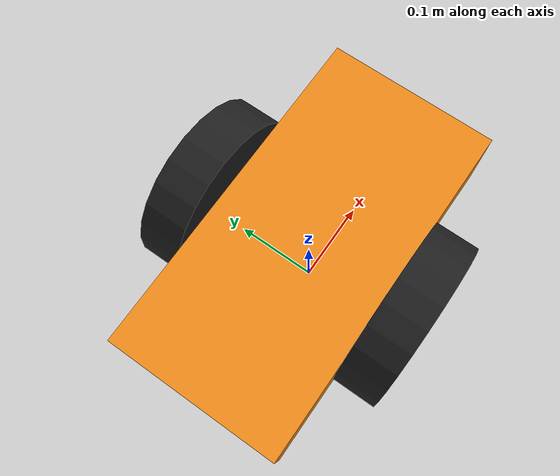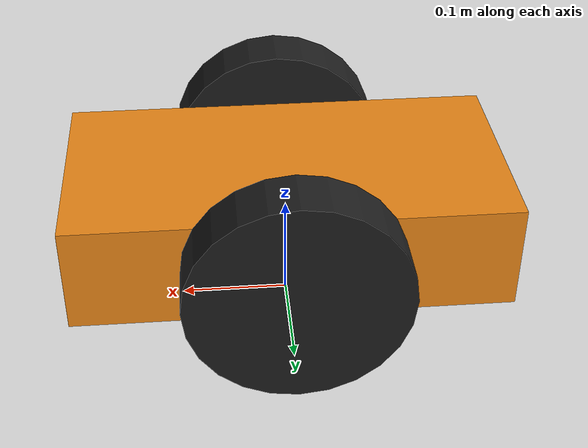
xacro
<?xml version="1.0"?>
<robot name="robot" xmlns:xacro="http://www.ros.org/wiki/xacro">
    <xacro:property name="PI" value="3.1415926535897931" />
    <xacro:property name="chassisHeight" value="0.1" />
    <xacro:property name="chassisLength" value="0.4" />
    <xacro:property name="chassisWidth" value="0.2" />
    <xacro:property name="chassisMass" value="50" />
    <xacro:property name="casterRadius" value="0.05" />
    <xacro:property name="casterMass" value="5" />
    <xacro:property name="wheelWidth" value="0.05" />
    <xacro:property name="wheelRadius" value="0.1" />
    <xacro:property name="wheelPos" value="0.2" />
    <xacro:property name="wheelMass" value="5" />
    <xacro:include filename="$(find urdf_tutorial)/urdf/macros.xacro" />
    <material name="orange">
  	<color rgba="${255/255} ${108/255} ${10/255} 1.0"/>
    </material>

    <material name="red">
	  <color rgba="0.8 0.0 0.0 1.0"/>
    </material>

    <link name='chassis'>
    <collision>
        <origin xyz="0 0 0.1" rpy="0 0 0" />
        <geometry>
            <box size="0.4 0.2 0.1" />
        </geometry>
    </collision>
    <visual>
        <origin xyz="0 0 0.1" rpy="0 0 0" />
        <geometry>
            <box size="0.4 0.2 0.1" />
        </geometry>

    </visual>
    <inertial>
        <origin xyz="0 0 0.1" rpy="0 0 0" />
        <mass value="50" />
        <inertia ixx="0.4" ixy="0" ixz="0" iyy="0.2" iyz="0" izz="0.1" />
    </inertial>
    </link>
    <link name="footprint" />
    <joint name="base_joint" type="fixed">
        <parent link="footprint" />
        <child link="chassis" />
    </joint>

    <link name="caster_wheel">
    <collision>
        <origin xyz="${casterRadius-chassisLength/2} 0 ${casterRadius-chassisHeight+wheelRadius}" rpy="0 0 0" />
        <geometry>
            <sphere radius="${casterRadius}" />
        </geometry>
    </collision>
    <visual>
        <origin xyz="${casterRadius-chassisLength/2} 0 ${casterRadius-chassisHeight+wheelRadius}" rpy="0 0 0" />
        <geometry>
            <sphere radius="${casterRadius}" />
        </geometry>
        <material name="red" />
    </visual>
    <inertial>
        <origin xyz="${casterRadius-chassisLength/2} 0 ${casterRadius-chassisHeight+wheelRadius}" rpy="0 0 0" />
        <mass value="${casterMass}" />
        <sphere_inertia m="${casterMass}" r="${casterRadius}" />
    </inertial>
    </link>

    <joint name="fixed" type="fixed">
        <parent link="chassis" />
        <child link="caster_wheel" />
    </joint>

    <link name="left_wheel">
    <collision>
        <origin xyz="0 0 0" rpy="0 ${PI/2} ${PI/2}" />
        <geometry>
            <cylinder length="${wheelWidth}" radius="${wheelRadius}" />
        </geometry>
    </collision>
    <visual>
        <origin xyz="0 0 0" rpy="0 ${PI/2} ${PI/2}" />
        <geometry>
            <cylinder length="${wheelWidth}" radius="${wheelRadius}" />
        </geometry>
        <material name="black" />
    </visual>
    <inertial>
        <origin xyz="0 0 0" rpy="0 ${PI/2} ${PI/2}" />
        <mass value="${wheelMass}" />
        <cylinder_inertia m="${wheelMass}" r="${wheelRadius}" h="${wheelWidth}" />
    </inertial>
    <surface>

      </surface>
    </link>

    <joint name="left_wheel_hinge" type="continuous">
        <parent link="chassis" />
        <child link="left_wheel" />
        <origin xyz="${-wheelPos+chassisLength/2} ${wheelWidth/2+1*chassisWidth/2} ${wheelRadius}" rpy="0 0 0" />
        <axis xyz="0 1 0" rpy="0 0 0" />
        <limit effort="100" velocity="100" />
        <joint_properties damping="0.0" friction="0.5" />
    </joint>

    <link name="right_wheel">
    <collision>
        <origin xyz="0 0 0" rpy="0 ${PI/2} ${PI/2}" />
        <geometry>
            <cylinder length="${wheelWidth}" radius="${wheelRadius}" />
        </geometry>
    </collision>
    <visual>
        <origin xyz="0 0 0" rpy="0 ${PI/2} ${PI/2}" />
        <geometry>
            <cylinder length="${wheelWidth}" radius="${wheelRadius}" />
        </geometry>
        <material name="black" />
    </visual>
    <inertial>
        <origin xyz="0 0 0" rpy="0 ${PI/2} ${PI/2}" />
        <mass value="${wheelMass}" />
        <cylinder_inertia m="${wheelMass}" r="${wheelRadius}" h="${wheelWidth}" />
    </inertial>
    <surface>

      </surface>
    </link>

    <joint name="right_wheel_hinge" type="continuous">
        <parent link="chassis" />
        <child link="right_wheel" />
        <origin xyz="${-wheelPos+chassisLength/2} ${-1*wheelWidth/2-1*chassisWidth/2} ${wheelRadius}" rpy="0 0 0" />
        <axis xyz="0 1 0" rpy="0 0 0" />
        <limit effort="100" velocity="100" />
        <joint_properties damping="0.0" friction="0.5" />
    </joint>

    <transmission name="tran1">
        <type>transmission_interface/SimpleTransmission</type>
        <joint name="left_wheel_hinge">
            <hardwareInterface>hardware_interface/EffortJointInterface</hardwareInterface>
        </joint>
        <actuator name="motor1">
            <hardwareInterface>hardware_interface/EffortJointInterface</hardwareInterface>
            <mechanicalReduction>1</mechanicalReduction>
        </actuator>
    </transmission>

    <transmission name="tran2">
        <type>transmission_interface/SimpleTransmission</type>
        <joint name="right_wheel_hinge">
            <hardwareInterface>hardware_interface/EffortJointInterface</hardwareInterface>
        </joint>
        <actuator name="motor2">
            <hardwareInterface>hardware_interface/EffortJointInterface</hardwareInterface>
            <mechanicalReduction>1</mechanicalReduction>
        </actuator>
    </transmission>
   <gazebo reference="chassis">
  		<material>Gazebo/Orange</material>
   </gazebo>
   <gazebo reference="caster_wheel">
        <mu1>0.5</mu1>
  	<mu2>0.5</mu2>
  	<material>Gazebo/Red</material>
   </gazebo>
   <gazebo reference="left_wheel">
        <mu1>0.5</mu1>
  	<mu2>0.5</mu2>
  	<material>Gazebo/Red</material>
   </gazebo>
   <gazebo reference="right_wheel">
        <mu1>0.5</mu1>
  	<mu2>0.5</mu2>
  	<material>Gazebo/Red</material>
   </gazebo>
   <gazebo>
	 <plugin name="gazebo_ros_control" filename="libgazebo_ros_control.so">
	 <robotNamespace></robotNamespace>
	 <robotSimType>gazebo_ros_control/DefaultRobotHWSim</robotSimType>
         <legacyModeNS>false</legacyModeNS>
	 </plugin>
  </gazebo>
<gazebo>
        <plugin name="differential_drive_controller" filename="libgazebo_ros_diff_drive.so">
            <alwaysOn>true</alwaysOn>
            <legacyMode>false</legacyMode>
            <updateRate>100</updateRate>
            <leftJoint>left_wheel_hinge</leftJoint>
            <rightJoint>right_wheel_hinge</rightJoint>
            <wheelSeparation>${chassisWidth+wheelWidth}</wheelSeparation>
            <wheelDiameter>${2*wheelRadius}</wheelDiameter>

            <commandTopic>cmd_vel</commandTopic>
            <odometryTopic>odom_diffdrive</odometryTopic>
            <odometryFrame>odom</odometryFrame>
            <robotBaseFrame>footprint</robotBaseFrame>
        </plugin>
    </gazebo>

</robot>

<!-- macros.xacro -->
<robot>
<macro name="cylinder_inertia" params="m r h">
    <inertia ixx="${m*(3*r*r+h*h)/12}" ixy="0" ixz="0" iyy="${m*(3*r*r+h*h)/12}" iyz="0" izz="${m*r*r/2}" />
</macro>
<macro name="box_inertia" params="m x y z">
    <inertia ixx="${m*(y*y+z*z)/12}" ixy="0" ixz="0" iyy="${m*(x*x+z*z)/12}" iyz="0" izz="${m*(x*x+y*y)/12}" />
</macro>
<macro name="sphere_inertia" params="m r">
    <inertia ixx="${2*m*r*r/5}" ixy="0" ixz="0" iyy="${2*m*r*r/5}" iyz="0" izz="${2*m*r*r/5}" />
</macro>
</robot>
